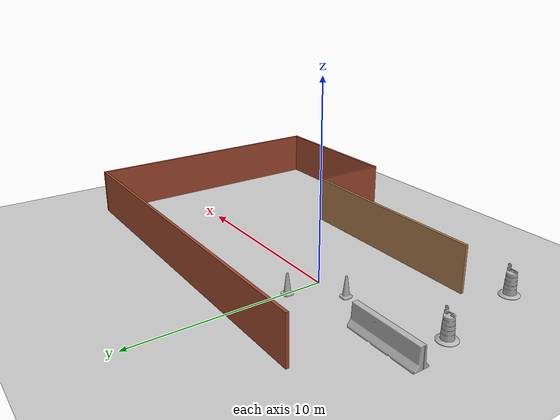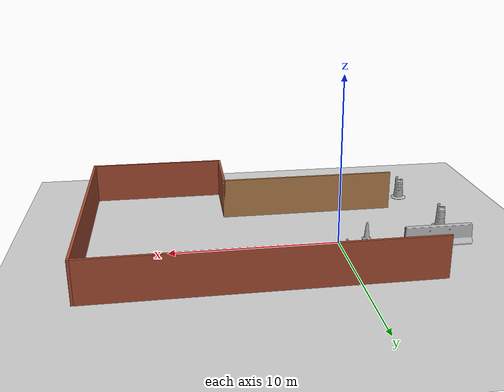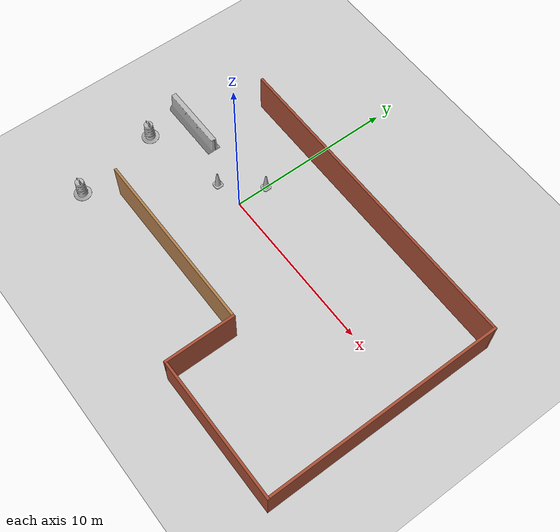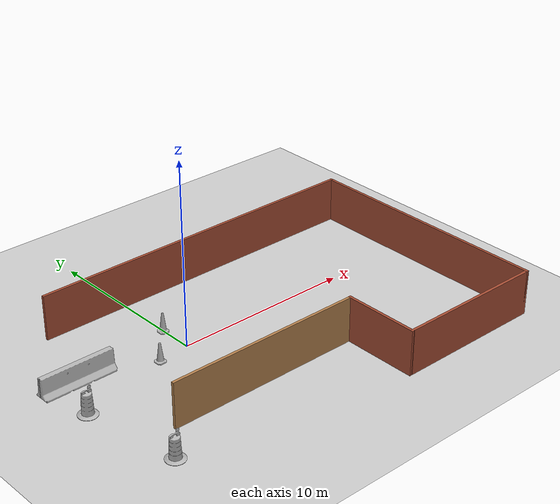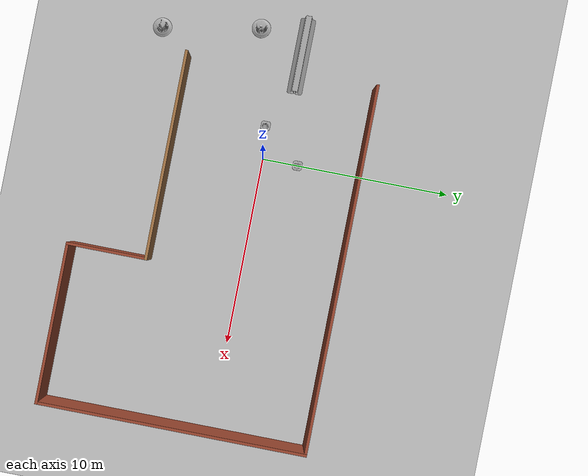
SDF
<sdf version="1.6">
 <world name="default">
  <light name="sun" type="directional">
   <pose>0 0 10 0 -0 0</pose>
   <diffuse>0.8 0.8 0.8 1</diffuse>
   <specular>0.2 0.2 0.2 1</specular>
   <attenuation>
    <range>1000</range>
    <constant>0.9</constant>
    <linear>0.01</linear>
    <quadratic>0.001</quadratic>
   </attenuation>
   <direction>-0.5 0.1 -0.9</direction>
  </light>
  <model name="ground_plane">
   <static>1</static>
   <link name="link">
    <collision name="collision">
     <geometry><plane><normal>0 0 1</normal><size>100 100</size></plane></geometry>
     <surface>
      <contact><collide_bitmask>65535</collide_bitmask></contact>
      <friction><ode><mu>100</mu><mu2>50</mu2></ode></friction>
     </surface>
    </collision>
    <visual name="visual">
     <cast_shadows>0</cast_shadows>
     <geometry><plane><normal>0 0 1</normal><size>100 100</size></plane></geometry>
     <material>
      <script><uri>file://media/materials/scripts/gazebo.material</uri><name>Gazebo/Grey</name></script>
     </material>
    </visual>
   </link>
  </model>
  <gravity>0 0 -9.8</gravity>
  <magnetic_field>6e-06 2.3e-05 -4.2e-05</magnetic_field>
  <atmosphere type="adiabatic"/>
  <physics name="default_physics" default="0" type="ode">
   <max_step_size>0.001</max_step_size>
   <real_time_factor>1</real_time_factor>
   <real_time_update_rate>1000</real_time_update_rate>
  </physics>
  <scene><ambient>0.4 0.4 0.4 1</ambient><background>0.7 0.7 0.7 1</background><shadows>1</shadows></scene>
  <spherical_coordinates>
   <surface_model>EARTH_WGS84</surface_model>
   <latitude_deg>0</latitude_deg>
   <longitude_deg>0</longitude_deg>
   <elevation>0</elevation>
   <heading_deg>0</heading_deg>
  </spherical_coordinates>
  <model name="jersey_barrier">
   <static>1</static>
   <link name="link">
    <visual name="visual">
     <geometry><mesh><uri>model://jersey_barrier/meshes/jersey_barrier.dae</uri></mesh></geometry>
    </visual>
    <collision name="upright">
     <pose>0 0 0.5715 0 -0 0</pose>
     <geometry><box><size>4.06542 0.3063 1.143</size></box></geometry>
    </collision>
    <collision name="base">
     <pose>0 0 0.032258 0 -0 0</pose>
     <geometry><box><size>4.06542 0.8107 0.064516</size></box></geometry>
    </collision>
    <collision name="base2">
     <pose>0 0 0.1 0 -0 0</pose>
     <geometry><box><size>4.06542 0.65 0.1</size></box></geometry>
    </collision>
    <collision name="base3">
     <pose>0 0 0.2 0 -0 0</pose>
     <geometry><box><size>4.06542 0.5 0.1</size></box></geometry>
    </collision>
    <collision name="left-angle">
     <pose>0 -0.224 0.2401 0.9 -0 0</pose>
     <geometry><box><size>4.06542 0.5 0.064516</size></box></geometry>
    </collision>
    <collision name="right-angle">
     <pose>0 0.224 0.2401 -0.9 0 0</pose>
     <geometry><box><size>4.06542 0.5 0.064516</size></box></geometry>
    </collision>
   </link>
   <pose>-5.77185 0.948931 0 0 -0 0</pose>
  </model>
  <model name="Construction Cone">
   <link name="link">
    <collision name="collision">
     <geometry>
      <mesh><scale>10 10 10</scale><uri>model://construction_cone/meshes/construction_cone.dae</uri></mesh>
     </geometry>
    </collision>
    <visual name="visual">
     <geometry>
      <mesh><scale>10 10 10</scale><uri>model://construction_cone/meshes/construction_cone.dae</uri></mesh>
     </geometry>
    </visual>
    <inertial>
     <inertia><ixx>1</ixx><ixy>0</ixy><ixz>0</ixz><iyy>1</iyy><iyz>0</iyz><izz>1</izz></inertia>
     <mass>1</mass>
    </inertial>
   </link>
   <pose>-0.015924 1.85828 -0 0 -0 0</pose>
  </model>
  <model name="Construction Barrel">
   <link name="link">
    <inertial>
     <pose>0 0 0.4 0 -0 0</pose>
     <mass>500</mass>
     <inertia><ixx>51.2096</ixx><iyy>51.2096</iyy><izz>25</izz><ixy>0</ixy><ixz>0</ixz><iyz>0</iyz></inertia>
    </inertial>
    <collision name="collision">
     <geometry><mesh><uri>model://construction_barrel/meshes/construction_barrel.dae</uri></mesh></geometry>
    </collision>
    <visual name="visual">
     <geometry><mesh><uri>model://construction_barrel/meshes/construction_barrel.dae</uri></mesh></geometry>
    </visual>
   </link>
   <pose>-5.90749 -6.6448 -2e-06 1e-06 8e-06 -3.8e-05</pose>
  </model>
  <model name="Construction Barrel_0">
   <link name="link">
    <inertial>
     <pose>0 0 0.4 0 -0 0</pose>
     <mass>500</mass>
     <inertia><ixx>51.2096</ixx><iyy>51.2096</iyy><izz>25</izz><ixy>0</ixy><ixz>0</ixz><iyz>0</iyz></inertia>
    </inertial>
    <collision name="collision">
     <geometry><mesh><uri>model://construction_barrel/meshes/construction_barrel.dae</uri></mesh></geometry>
    </collision>
    <visual name="visual">
     <geometry><mesh><uri>model://construction_barrel/meshes/construction_barrel.dae</uri></mesh></geometry>
    </visual>
   </link>
   <pose>-6.85636 -1.44047 0 0 0 -1.3e-05</pose>
  </model>
  <model name="Construction Cone_0">
   <link name="link">
    <collision name="collision">
     <geometry>
      <mesh><scale>10 10 10</scale><uri>model://construction_cone/meshes/construction_cone.dae</uri></mesh>
     </geometry>
    </collision>
    <visual name="visual">
     <geometry>
      <mesh><scale>10 10 10</scale><uri>model://construction_cone/meshes/construction_cone.dae</uri></mesh>
     </geometry>
    </visual>
    <inertial>
     <inertia><ixx>1</ixx><ixy>0</ixy><ixz>0</ixz><iyy>1</iyy><iyz>0</iyz><izz>1</izz></inertia>
     <mass>1</mass>
    </inertial>
   </link>
   <pose>-1.78164 -0.216712 -0 0 -0 0</pose>
  </model>
  <model name="world_0">
   <pose>4.99912 -1.95172 0 0 -0 0</pose>
   <link name="Wall_16">
    <collision name="Wall_16_Collision">
     <geometry><box><size>11 0.15 2.5</size></box></geometry>
     <pose>0 0 1.25 0 -0 0</pose>
    </collision>
    <visual name="Wall_16_Visual">
     <pose>0 0 1.25 0 -0 0</pose>
     <geometry><box><size>11 0.15 2.5</size></box></geometry>
     <material>
      <script><uri>file://media/materials/scripts/gazebo.material</uri><name>Gazebo/Wood</name></script>
      <ambient>1 1 1 1</ambient>
     </material>
     <meta><layer>0</layer></meta>
    </visual>
    <pose>-4.1 -2.95 0 0 -0 0</pose>
   </link>
   <link name="Wall_17">
    <collision name="Wall_17_Collision">
     <geometry><box><size>4.25 0.15 2.5</size></box></geometry>
     <pose>0 0 1.25 0 -0 0</pose>
    </collision>
    <visual name="Wall_17_Visual">
     <pose>0 0 1.25 0 -0 0</pose>
     <geometry><box><size>4.25 0.15 2.5</size></box></geometry>
     <material>
      <script><uri>file://media/materials/scripts/gazebo.material</uri><name>Gazebo/Bricks</name></script>
      <ambient>1 1 1 1</ambient>
     </material>
     <meta><layer>0</layer></meta>
    </visual>
    <pose>1.325 -5 0 0 -0 -1.5708</pose>
   </link>
   <link name="Wall_18">
    <collision name="Wall_18_Collision">
     <geometry><box><size>8.5 0.15 2.5</size></box></geometry>
     <pose>0 0 1.25 0 -0 0</pose>
    </collision>
    <visual name="Wall_18_Visual">
     <pose>0 0 1.25 0 -0 0</pose>
     <geometry><box><size>8.5 0.15 2.5</size></box></geometry>
     <material>
      <script><uri>file://media/materials/scripts/gazebo.material</uri><name>Gazebo/Bricks</name></script>
      <ambient>0.996078 0.47451 0.0196078 1</ambient>
     </material>
     <meta><layer>0</layer></meta>
    </visual>
    <pose>5.5 -7.05 0 0 -0 0</pose>
   </link>
   <link name="Wall_19">
    <collision name="Wall_19_Collision">
     <geometry><box><size>14.25 0.15 2.5</size></box></geometry>
     <pose>0 0 1.25 0 -0 0</pose>
    </collision>
    <visual name="Wall_19_Visual">
     <pose>0 0 1.25 0 -0 0</pose>
     <geometry><box><size>14.25 0.15 2.5</size></box></geometry>
     <material>
      <script><uri>file://media/materials/scripts/gazebo.material</uri><name>Gazebo/Bricks</name></script>
      <ambient>1 1 1 1</ambient>
     </material>
     <meta><layer>0</layer></meta>
    </visual>
    <pose>9.675 -0 0 0 -0 1.5708</pose>
   </link>
   <link name="Wall_20">
    <collision name="Wall_20_Collision">
     <geometry><box><size>19.5 0.15 2.5</size></box></geometry>
     <pose>0 0 1.25 0 -0 0</pose>
    </collision>
    <visual name="Wall_20_Visual">
     <pose>0 0 1.25 0 -0 0</pose>
     <geometry><box><size>19.5 0.15 2.5</size></box></geometry>
     <material>
      <script><uri>file://media/materials/scripts/gazebo.material</uri><name>Gazebo/Bricks</name></script>
      <ambient>0.435294 0.796078 0.67451 1</ambient>
     </material>
     <meta><layer>0</layer></meta>
    </visual>
    <pose>-0 7.05 0 0 -0 3.14159</pose>
   </link>
   <static>1</static>
  </model>
 </world>
</sdf>
